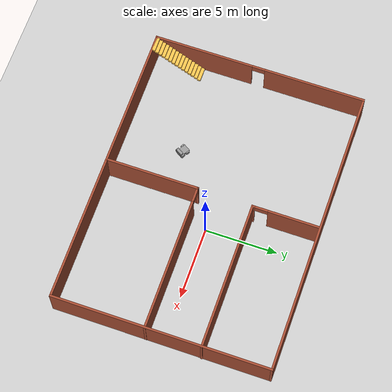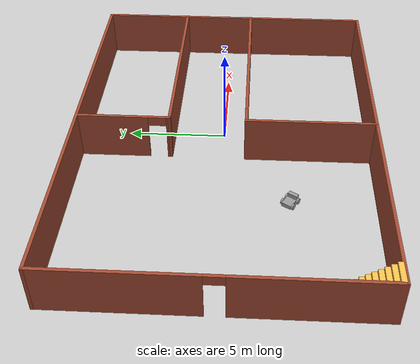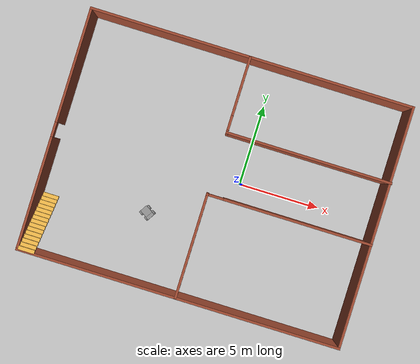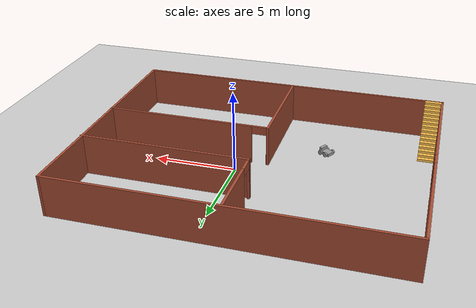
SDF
<sdf version="1.6">
 <world name="default">
  <model name="ground_plane">
   <static>1</static>
   <link name="link">
    <collision name="collision">
     <geometry><plane><normal>0 0 1</normal><size>100 100</size></plane></geometry>
     <surface><friction><ode><mu>100</mu><mu2>50</mu2></ode></friction></surface>
    </collision>
    <visual name="visual">
     <cast_shadows>0</cast_shadows>
     <geometry><plane><normal>0 0 1</normal><size>100 100</size></plane></geometry>
     <material>
      <script><uri>file://media/materials/scripts/gazebo.material</uri><name>Gazebo/Grey</name></script>
     </material>
    </visual>
   </link>
  </model>
  <model name="my_building">
   <pose>-1.54952 -0.113729 0 0 -0 0</pose>
   <link name="Stairs_0">
    <visual name="Stairs_0_Visual_0">
     <pose>-9.39287 -4.03181 0.083333 0 -0 0</pose>
     <geometry><box><size>1 0.233333 0.166667</size></box></geometry>
     <material>
      <script><uri>file://media/materials/scripts/gazebo.material</uri><name>Gazebo/Grey</name></script>
      <ambient>1 0.764706 0.305882 1</ambient>
     </material>
    </visual>
    <collision name="Stairs_0_Collision_0">
     <geometry><box><size>1 0.233333 0.166667</size></box></geometry>
     <pose>-9.39287 -4.03181 0.083333 0 -0 0</pose>
    </collision>
    <visual name="Stairs_0_Visual_1">
     <pose>-9.39287 -4.26514 0.25 0 -0 0</pose>
     <geometry><box><size>1 0.233333 0.166667</size></box></geometry>
     <material>
      <script><uri>file://media/materials/scripts/gazebo.material</uri><name>Gazebo/Grey</name></script>
      <ambient>1 0.764706 0.305882 1</ambient>
     </material>
    </visual>
    <collision name="Stairs_0_Collision_1">
     <geometry><box><size>1 0.233333 0.166667</size></box></geometry>
     <pose>-9.39287 -4.26514 0.25 0 -0 0</pose>
    </collision>
    <visual name="Stairs_0_Visual_2">
     <pose>-9.39287 -4.49847 0.416667 0 -0 0</pose>
     <geometry><box><size>1 0.233333 0.166667</size></box></geometry>
     <material>
      <script><uri>file://media/materials/scripts/gazebo.material</uri><name>Gazebo/Grey</name></script>
      <ambient>1 0.764706 0.305882 1</ambient>
     </material>
    </visual>
    <collision name="Stairs_0_Collision_2">
     <geometry><box><size>1 0.233333 0.166667</size></box></geometry>
     <pose>-9.39287 -4.49847 0.416667 0 -0 0</pose>
    </collision>
    <visual name="Stairs_0_Visual_3">
     <pose>-9.39287 -4.73181 0.583333 0 -0 0</pose>
     <geometry><box><size>1 0.233333 0.166667</size></box></geometry>
     <material>
      <script><uri>file://media/materials/scripts/gazebo.material</uri><name>Gazebo/Grey</name></script>
      <ambient>1 0.764706 0.305882 1</ambient>
     </material>
    </visual>
    <collision name="Stairs_0_Collision_3">
     <geometry><box><size>1 0.233333 0.166667</size></box></geometry>
     <pose>-9.39287 -4.73181 0.583333 0 -0 0</pose>
    </collision>
    <visual name="Stairs_0_Visual_4">
     <pose>-9.39287 -4.96514 0.75 0 -0 0</pose>
     <geometry><box><size>1 0.233333 0.166667</size></box></geometry>
     <material>
      <script><uri>file://media/materials/scripts/gazebo.material</uri><name>Gazebo/Grey</name></script>
      <ambient>1 0.764706 0.305882 1</ambient>
     </material>
    </visual>
    <collision name="Stairs_0_Collision_4">
     <geometry><box><size>1 0.233333 0.166667</size></box></geometry>
     <pose>-9.39287 -4.96514 0.75 0 -0 0</pose>
    </collision>
    <visual name="Stairs_0_Visual_5">
     <pose>-9.39287 -5.19847 0.916667 0 -0 0</pose>
     <geometry><box><size>1 0.233333 0.166667</size></box></geometry>
     <material>
      <script><uri>file://media/materials/scripts/gazebo.material</uri><name>Gazebo/Grey</name></script>
      <ambient>1 0.764706 0.305882 1</ambient>
     </material>
    </visual>
    <collision name="Stairs_0_Collision_5">
     <geometry><box><size>1 0.233333 0.166667</size></box></geometry>
     <pose>-9.39287 -5.19847 0.916667 0 -0 0</pose>
    </collision>
    <visual name="Stairs_0_Visual_6">
     <pose>-9.39287 -5.43181 1.08333 0 -0 0</pose>
     <geometry><box><size>1 0.233333 0.166667</size></box></geometry>
     <material>
      <script><uri>file://media/materials/scripts/gazebo.material</uri><name>Gazebo/Grey</name></script>
      <ambient>1 0.764706 0.305882 1</ambient>
     </material>
    </visual>
    <collision name="Stairs_0_Collision_6">
     <geometry><box><size>1 0.233333 0.166667</size></box></geometry>
     <pose>-9.39287 -5.43181 1.08333 0 -0 0</pose>
    </collision>
    <visual name="Stairs_0_Visual_7">
     <pose>-9.39287 -5.66514 1.25 0 -0 0</pose>
     <geometry><box><size>1 0.233333 0.166667</size></box></geometry>
     <material>
      <script><uri>file://media/materials/scripts/gazebo.material</uri><name>Gazebo/Grey</name></script>
      <ambient>1 0.764706 0.305882 1</ambient>
     </material>
    </visual>
    <collision name="Stairs_0_Collision_7">
     <geometry><box><size>1 0.233333 0.166667</size></box></geometry>
     <pose>-9.39287 -5.66514 1.25 0 -0 0</pose>
    </collision>
    <visual name="Stairs_0_Visual_8">
     <pose>-9.39287 -5.89848 1.41667 0 -0 0</pose>
     <geometry><box><size>1 0.233333 0.166667</size></box></geometry>
     <material>
      <script><uri>file://media/materials/scripts/gazebo.material</uri><name>Gazebo/Grey</name></script>
      <ambient>1 0.764706 0.305882 1</ambient>
     </material>
    </visual>
    <collision name="Stairs_0_Collision_8">
     <geometry><box><size>1 0.233333 0.166667</size></box></geometry>
     <pose>-9.39287 -5.89848 1.41667 0 -0 0</pose>
    </collision>
    <visual name="Stairs_0_Visual_9">
     <pose>-9.39287 -6.13181 1.58333 0 -0 0</pose>
     <geometry><box><size>1 0.233333 0.166667</size></box></geometry>
     <material>
      <script><uri>file://media/materials/scripts/gazebo.material</uri><name>Gazebo/Grey</name></script>
      <ambient>1 0.764706 0.305882 1</ambient>
     </material>
    </visual>
    <collision name="Stairs_0_Collision_9">
     <geometry><box><size>1 0.233333 0.166667</size></box></geometry>
     <pose>-9.39287 -6.13181 1.58333 0 -0 0</pose>
    </collision>
    <visual name="Stairs_0_Visual_10">
     <pose>-9.39287 -6.36514 1.75 0 -0 0</pose>
     <geometry><box><size>1 0.233333 0.166667</size></box></geometry>
     <material>
      <script><uri>file://media/materials/scripts/gazebo.material</uri><name>Gazebo/Grey</name></script>
      <ambient>1 0.764706 0.305882 1</ambient>
     </material>
    </visual>
    <collision name="Stairs_0_Collision_10">
     <geometry><box><size>1 0.233333 0.166667</size></box></geometry>
     <pose>-9.39287 -6.36514 1.75 0 -0 0</pose>
    </collision>
    <visual name="Stairs_0_Visual_11">
     <pose>-9.39287 -6.59847 1.91667 0 -0 0</pose>
     <geometry><box><size>1 0.233333 0.166667</size></box></geometry>
     <material>
      <script><uri>file://media/materials/scripts/gazebo.material</uri><name>Gazebo/Grey</name></script>
      <ambient>1 0.764706 0.305882 1</ambient>
     </material>
    </visual>
    <collision name="Stairs_0_Collision_11">
     <geometry><box><size>1 0.233333 0.166667</size></box></geometry>
     <pose>-9.39287 -6.59847 1.91667 0 -0 0</pose>
    </collision>
    <visual name="Stairs_0_Visual_12">
     <pose>-9.39287 -6.83181 2.08333 0 -0 0</pose>
     <geometry><box><size>1 0.233333 0.166667</size></box></geometry>
     <material>
      <script><uri>file://media/materials/scripts/gazebo.material</uri><name>Gazebo/Grey</name></script>
      <ambient>1 0.764706 0.305882 1</ambient>
     </material>
    </visual>
    <collision name="Stairs_0_Collision_12">
     <geometry><box><size>1 0.233333 0.166667</size></box></geometry>
     <pose>-9.39287 -6.83181 2.08333 0 -0 0</pose>
    </collision>
    <visual name="Stairs_0_Visual_13">
     <pose>-9.39287 -7.06514 2.25 0 -0 0</pose>
     <geometry><box><size>1 0.233333 0.166667</size></box></geometry>
     <material>
      <script><uri>file://media/materials/scripts/gazebo.material</uri><name>Gazebo/Grey</name></script>
      <ambient>1 0.764706 0.305882 1</ambient>
     </material>
    </visual>
    <collision name="Stairs_0_Collision_13">
     <geometry><box><size>1 0.233333 0.166667</size></box></geometry>
     <pose>-9.39287 -7.06514 2.25 0 -0 0</pose>
    </collision>
    <visual name="Stairs_0_Visual_14">
     <pose>-9.39287 -7.29847 2.41667 0 -0 0</pose>
     <geometry><box><size>1 0.233333 0.166667</size></box></geometry>
     <material>
      <script><uri>file://media/materials/scripts/gazebo.material</uri><name>Gazebo/Grey</name></script>
      <ambient>1 0.764706 0.305882 1</ambient>
     </material>
    </visual>
    <collision name="Stairs_0_Collision_14">
     <geometry><box><size>1 0.233333 0.166667</size></box></geometry>
     <pose>-9.39287 -7.29847 2.41667 0 -0 0</pose>
    </collision>
   </link>
   <link name="Wall_10">
    <collision name="Wall_10_Collision">
     <geometry><box><size>6.5 0.15 2.5</size></box></geometry>
     <pose>0 0 1.25 0 -0 0</pose>
    </collision>
    <visual name="Wall_10_Visual">
     <pose>0 0 1.25 0 -0 0</pose>
     <geometry><box><size>6.5 0.15 2.5</size></box></geometry>
     <material>
      <script><uri>file://media/materials/scripts/gazebo.material</uri><name>Gazebo/Bricks</name></script>
      <ambient>1 1 1 1</ambient>
     </material>
    </visual>
    <pose>-0.184819 -4.2104 0 0 -0 1.5708</pose>
   </link>
   <link name="Wall_11">
    <pose>4.86518 -1.0354 0 0 -0 0</pose>
    <visual name="Wall_11_Visual_0">
     <pose>-5.04163 0 1.25 0 -0 0</pose>
     <geometry><box><size>0.166741 0.15 2.5</size></box></geometry>
     <material>
      <script><uri>file://media/materials/scripts/gazebo.material</uri><name>Gazebo/Bricks</name></script>
      <ambient>1 1 1 1</ambient>
     </material>
    </visual>
    <collision name="Wall_11_Collision_0">
     <geometry><box><size>0.166741 0.15 2.5</size></box></geometry>
     <pose>-5.04163 0 1.25 0 -0 0</pose>
    </collision>
    <visual name="Wall_11_Visual_1">
     <pose>0.53337 0 1.25 0 -0 0</pose>
     <geometry><box><size>9.18326 0.15 2.5</size></box></geometry>
     <material>
      <script><uri>file://media/materials/scripts/gazebo.material</uri><name>Gazebo/Bricks</name></script>
      <ambient>1 1 1 1</ambient>
     </material>
    </visual>
    <collision name="Wall_11_Collision_1">
     <geometry><box><size>9.18326 0.15 2.5</size></box></geometry>
     <pose>0.53337 0 1.25 0 -0 0</pose>
    </collision>
    <visual name="Wall_11_Visual_2">
     <pose>-4.50826 0 2.25 0 -0 0</pose>
     <geometry><box><size>0.9 0.15 0.5</size></box></geometry>
     <material>
      <script><uri>file://media/materials/scripts/gazebo.material</uri><name>Gazebo/Bricks</name></script>
      <ambient>1 1 1 1</ambient>
     </material>
    </visual>
    <collision name="Wall_11_Collision_2">
     <geometry><box><size>0.9 0.15 0.5</size></box></geometry>
     <pose>-4.50826 0 2.25 0 -0 0</pose>
    </collision>
   </link>
   <link name="Wall_13">
    <collision name="Wall_13_Collision">
     <geometry><box><size>10.25 0.15 2.5</size></box></geometry>
     <pose>0 0 1.25 0 -0 0</pose>
    </collision>
    <visual name="Wall_13_Visual">
     <pose>0 0 1.25 0 -0 0</pose>
     <geometry><box><size>10.25 0.15 2.5</size></box></geometry>
     <material>
      <script><uri>file://media/materials/scripts/gazebo.material</uri><name>Gazebo/Bricks</name></script>
      <ambient>1 1 1 1</ambient>
     </material>
    </visual>
    <pose>4.89666 2.78126 0 0 -0 3.14159</pose>
   </link>
   <link name="Wall_14">
    <pose>-0.153335 5.08126 0 0 -0 1.5708</pose>
    <visual name="Wall_14_Visual_0">
     <pose>-2.25468 0 1.25 0 -0 0</pose>
     <geometry><box><size>0.24065 0.15 2.5</size></box></geometry>
     <material>
      <script><uri>file://media/materials/scripts/gazebo.material</uri><name>Gazebo/Bricks</name></script>
      <ambient>1 1 1 1</ambient>
     </material>
    </visual>
    <collision name="Wall_14_Collision_0">
     <geometry><box><size>0.24065 0.15 2.5</size></box></geometry>
     <pose>-2.25468 0 1.25 0 -0 0</pose>
    </collision>
    <visual name="Wall_14_Visual_1">
     <pose>0.570325 0 1.25 0 -0 0</pose>
     <geometry><box><size>3.60935 0.15 2.5</size></box></geometry>
     <material>
      <script><uri>file://media/materials/scripts/gazebo.material</uri><name>Gazebo/Bricks</name></script>
      <ambient>1 1 1 1</ambient>
     </material>
    </visual>
    <collision name="Wall_14_Collision_1">
     <geometry><box><size>3.60935 0.15 2.5</size></box></geometry>
     <pose>0.570325 0 1.25 0 -0 0</pose>
    </collision>
    <visual name="Wall_14_Visual_2">
     <pose>-1.68435 0 2.25 0 -0 0</pose>
     <geometry><box><size>0.9 0.15 0.5</size></box></geometry>
     <material>
      <script><uri>file://media/materials/scripts/gazebo.material</uri><name>Gazebo/Bricks</name></script>
      <ambient>1 1 1 1</ambient>
     </material>
    </visual>
    <collision name="Wall_14_Collision_2">
     <geometry><box><size>0.9 0.15 0.5</size></box></geometry>
     <pose>-1.68435 0 2.25 0 -0 0</pose>
    </collision>
   </link>
   <link name="Wall_2">
    <collision name="Wall_2_Collision">
     <geometry><box><size>20 0.15 2.5</size></box></geometry>
     <pose>0 0 1.25 0 -0 0</pose>
    </collision>
    <visual name="Wall_2_Visual">
     <pose>0 0 1.25 0 -0 0</pose>
     <geometry><box><size>20 0.15 2.5</size></box></geometry>
     <material>
      <script><uri>file://media/materials/scripts/gazebo.material</uri><name>Gazebo/Bricks</name></script>
      <ambient>1 1 1 1</ambient>
     </material>
    </visual>
    <pose>-0.021664 -7.425 0 0 -0 0</pose>
   </link>
   <link name="Wall_3">
    <collision name="Wall_3_Collision">
     <geometry><box><size>15 0.15 2.5</size></box></geometry>
     <pose>0 0 1.25 0 -0 0</pose>
    </collision>
    <visual name="Wall_3_Visual">
     <pose>0 0 1.25 0 -0 0</pose>
     <geometry><box><size>15 0.15 2.5</size></box></geometry>
     <material>
      <script><uri>file://media/materials/scripts/gazebo.material</uri><name>Gazebo/Bricks</name></script>
      <ambient>1 1 1 1</ambient>
     </material>
    </visual>
    <pose>9.90334 0 0 0 -0 1.5708</pose>
   </link>
   <link name="Wall_4">
    <collision name="Wall_4_Collision">
     <geometry><box><size>20 0.15 2.5</size></box></geometry>
     <pose>0 0 1.25 0 -0 0</pose>
    </collision>
    <visual name="Wall_4_Visual">
     <pose>0 0 1.25 0 -0 0</pose>
     <geometry><box><size>20 0.15 2.5</size></box></geometry>
     <material>
      <script><uri>file://media/materials/scripts/gazebo.material</uri><name>Gazebo/Bricks</name></script>
      <ambient>1 1 1 1</ambient>
     </material>
    </visual>
    <pose>-0.021664 7.425 0 0 -0 3.14159</pose>
   </link>
   <link name="Wall_8">
    <pose>-9.94666 0 0 0 0 -1.5708</pose>
    <visual name="Wall_8_Visual_0">
     <pose>-3.95046 0 1.25 0 -0 0</pose>
     <geometry><box><size>7.09907 0.15 2.5</size></box></geometry>
     <material>
      <script><uri>file://media/materials/scripts/gazebo.material</uri><name>Gazebo/Bricks</name></script>
      <ambient>1 1 1 1</ambient>
     </material>
    </visual>
    <collision name="Wall_8_Collision_0">
     <geometry><box><size>7.09907 0.15 2.5</size></box></geometry>
     <pose>-3.95046 0 1.25 0 -0 0</pose>
    </collision>
    <visual name="Wall_8_Visual_1">
     <pose>3.99954 0 1.25 0 -0 0</pose>
     <geometry><box><size>7.00093 0.15 2.5</size></box></geometry>
     <material>
      <script><uri>file://media/materials/scripts/gazebo.material</uri><name>Gazebo/Bricks</name></script>
      <ambient>1 1 1 1</ambient>
     </material>
    </visual>
    <collision name="Wall_8_Collision_1">
     <geometry><box><size>7.00093 0.15 2.5</size></box></geometry>
     <pose>3.99954 0 1.25 0 -0 0</pose>
    </collision>
    <visual name="Wall_8_Visual_2">
     <pose>0.049074 0 2.25 0 -0 0</pose>
     <geometry><box><size>0.9 0.15 0.5</size></box></geometry>
     <material>
      <script><uri>file://media/materials/scripts/gazebo.material</uri><name>Gazebo/Bricks</name></script>
      <ambient>1 1 1 1</ambient>
     </material>
    </visual>
    <collision name="Wall_8_Collision_2">
     <geometry><box><size>0.9 0.15 0.5</size></box></geometry>
     <pose>0.049074 0 2.25 0 -0 0</pose>
    </collision>
   </link>
   <static>1</static>
  </model>
  <model name="my_robot_0">
   <link name="link_0">
    <pose>-0.054167 -1e-06 -0.033333 0 -0 0</pose>
    <inertial>
     <mass>1</mass>
     <inertia>
      <ixx>0.166667</ixx>
      <ixy>0</ixy>
      <ixz>0</ixz>
      <iyy>0.166667</iyy>
      <iyz>0</iyz>
      <izz>0.166667</izz>
     </inertia>
    </inertial>
    <visual name="visual">
     <geometry><box><size>0.75 0.5 0.2</size></box></geometry>
     <material>
      <lighting>1</lighting>
      <script><uri>file://media/materials/scripts/gazebo.material</uri><name>Gazebo/Grey</name></script>
      <ambient>0.3 0.3 0.3 1</ambient>
      <diffuse>0.7 0.7 0.7 1</diffuse>
      <specular>0.01 0.01 0.01 1</specular>
      <emissive>0 0 0 1</emissive>
      <shader type="vertex"><normal_map>__default__</normal_map></shader>
     </material>
    </visual>
    <collision name="collision">
     <geometry><box><size>0.75 0.5 0.2</size></box></geometry>
     <surface>
      <friction>
       <ode><mu>1</mu><mu2>1</mu2><fdir1>0 0 0</fdir1><slip1>0</slip1><slip2>0</slip2></ode>
       <torsional>
        <coefficient>1</coefficient>
        <patch_radius>0</patch_radius>
        <surface_radius>0</surface_radius>
        <use_patch_radius>1</use_patch_radius>
        <ode><slip>0</slip></ode>
       </torsional>
      </friction>
      <bounce><restitution_coefficient>0</restitution_coefficient><threshold>1e+06</threshold></bounce>
      <contact>
       <collide_without_contact>0</collide_without_contact>
       <collide_without_contact_bitmask>1</collide_without_contact_bitmask>
       <collide_bitmask>1</collide_bitmask>
       <ode>
        <soft_cfm>0</soft_cfm>
        <soft_erp>0.2</soft_erp>
        <kp>1e+13</kp>
        <kd>1</kd>
        <max_vel>0.01</max_vel>
        <min_depth>0</min_depth>
       </ode>
       <bullet>
        <split_impulse>1</split_impulse>
        <split_impulse_penetration_threshold>-0.01</split_impulse_penetration_threshold>
        <soft_cfm>0</soft_cfm>
        <soft_erp>0.2</soft_erp>
        <kp>1e+13</kp>
        <kd>1</kd>
       </bullet>
      </contact>
     </surface>
    </collision>
   </link>
   <link name="link_1">
    <pose>-0.229167 0.300018 -0.033333 1.5707 -0 0</pose>
    <inertial>
     <mass>1</mass>
     <inertia><ixx>0.145833</ixx><ixy>0</ixy><ixz>0</ixz><iyy>0.145833</iyy><iyz>0</iyz><izz>0.125</izz></inertia>
    </inertial>
    <visual name="visual">
     <geometry><cylinder><radius>0.15</radius><length>0.1</length></cylinder></geometry>
     <material>
      <lighting>1</lighting>
      <script><uri>file://media/materials/scripts/gazebo.material</uri><name>Gazebo/Grey</name></script>
      <ambient>0.3 0.3 0.3 1</ambient>
      <diffuse>0.7 0.7 0.7 1</diffuse>
      <specular>0.01 0.01 0.01 1</specular>
      <emissive>0 0 0 1</emissive>
      <shader type="vertex"><normal_map>__default__</normal_map></shader>
     </material>
    </visual>
    <collision name="collision">
     <geometry><cylinder><radius>0.15</radius><length>0.1</length></cylinder></geometry>
     <surface>
      <friction>
       <ode><mu>1</mu><mu2>1</mu2><fdir1>0 0 0</fdir1><slip1>0</slip1><slip2>0</slip2></ode>
       <torsional>
        <coefficient>1</coefficient>
        <patch_radius>0</patch_radius>
        <surface_radius>0</surface_radius>
        <use_patch_radius>1</use_patch_radius>
        <ode><slip>0</slip></ode>
       </torsional>
      </friction>
      <bounce><restitution_coefficient>0</restitution_coefficient><threshold>1e+06</threshold></bounce>
      <contact>
       <collide_without_contact>0</collide_without_contact>
       <collide_without_contact_bitmask>1</collide_without_contact_bitmask>
       <collide_bitmask>1</collide_bitmask>
       <ode>
        <soft_cfm>0</soft_cfm>
        <soft_erp>0.2</soft_erp>
        <kp>1e+13</kp>
        <kd>1</kd>
        <max_vel>0.01</max_vel>
        <min_depth>0</min_depth>
       </ode>
       <bullet>
        <split_impulse>1</split_impulse>
        <split_impulse_penetration_threshold>-0.01</split_impulse_penetration_threshold>
        <soft_cfm>0</soft_cfm>
        <soft_erp>0.2</soft_erp>
        <kp>1e+13</kp>
        <kd>1</kd>
       </bullet>
      </contact>
     </surface>
    </collision>
   </link>
   <link name="link_1_clone">
    <pose>0.170833 0.300014 -0.033333 1.5707 -0 0</pose>
    <inertial>
     <mass>1</mass>
     <inertia><ixx>0.145833</ixx><ixy>0</ixy><ixz>0</ixz><iyy>0.145833</iyy><iyz>0</iyz><izz>0.125</izz></inertia>
    </inertial>
    <visual name="visual">
     <geometry><cylinder><radius>0.15</radius><length>0.1</length></cylinder></geometry>
     <material>
      <lighting>1</lighting>
      <script><uri>file://media/materials/scripts/gazebo.material</uri><name>Gazebo/Grey</name></script>
      <ambient>0.3 0.3 0.3 1</ambient>
      <diffuse>0.7 0.7 0.7 1</diffuse>
      <specular>0.01 0.01 0.01 1</specular>
      <emissive>0 0 0 1</emissive>
      <shader type="vertex"><normal_map>__default__</normal_map></shader>
     </material>
    </visual>
    <collision name="collision">
     <geometry><cylinder><radius>0.15</radius><length>0.1</length></cylinder></geometry>
     <surface>
      <friction>
       <ode><mu>1</mu><mu2>1</mu2><fdir1>0 0 0</fdir1><slip1>0</slip1><slip2>0</slip2></ode>
       <torsional>
        <coefficient>1</coefficient>
        <patch_radius>0</patch_radius>
        <surface_radius>0</surface_radius>
        <use_patch_radius>1</use_patch_radius>
        <ode><slip>0</slip></ode>
       </torsional>
      </friction>
      <bounce><restitution_coefficient>0</restitution_coefficient><threshold>1e+06</threshold></bounce>
      <contact>
       <collide_without_contact>0</collide_without_contact>
       <collide_without_contact_bitmask>1</collide_without_contact_bitmask>
       <collide_bitmask>1</collide_bitmask>
       <ode>
        <soft_cfm>0</soft_cfm>
        <soft_erp>0.2</soft_erp>
        <kp>1e+13</kp>
        <kd>1</kd>
        <max_vel>0.01</max_vel>
        <min_depth>0</min_depth>
       </ode>
       <bullet>
        <split_impulse>1</split_impulse>
        <split_impulse_penetration_threshold>-0.01</split_impulse_penetration_threshold>
        <soft_cfm>0</soft_cfm>
        <soft_erp>0.2</soft_erp>
        <kp>1e+13</kp>
        <kd>1</kd>
       </bullet>
      </contact>
     </surface>
    </collision>
   </link>
   <link name="link_1_clone_clone">
    <pose>-0.279167 -0.300015 -0.033333 1.5707 -0 0</pose>
    <inertial>
     <mass>1</mass>
     <inertia><ixx>0.145833</ixx><ixy>0</ixy><ixz>0</ixz><iyy>0.145833</iyy><iyz>0</iyz><izz>0.125</izz></inertia>
    </inertial>
    <visual name="visual">
     <geometry><cylinder><radius>0.15</radius><length>0.1</length></cylinder></geometry>
     <material>
      <lighting>1</lighting>
      <script><uri>file://media/materials/scripts/gazebo.material</uri><name>Gazebo/Grey</name></script>
      <ambient>0.3 0.3 0.3 1</ambient>
      <diffuse>0.7 0.7 0.7 1</diffuse>
      <specular>0.01 0.01 0.01 1</specular>
      <emissive>0 0 0 1</emissive>
      <shader type="vertex"><normal_map>__default__</normal_map></shader>
     </material>
    </visual>
    <collision name="collision">
     <geometry><cylinder><radius>0.15</radius><length>0.1</length></cylinder></geometry>
     <surface>
      <friction>
       <ode><mu>1</mu><mu2>1</mu2><fdir1>0 0 0</fdir1><slip1>0</slip1><slip2>0</slip2></ode>
       <torsional>
        <coefficient>1</coefficient>
        <patch_radius>0</patch_radius>
        <surface_radius>0</surface_radius>
        <use_patch_radius>1</use_patch_radius>
        <ode><slip>0</slip></ode>
       </torsional>
      </friction>
      <bounce><restitution_coefficient>0</restitution_coefficient><threshold>1e+06</threshold></bounce>
      <contact>
       <collide_without_contact>0</collide_without_contact>
       <collide_without_contact_bitmask>1</collide_without_contact_bitmask>
       <collide_bitmask>1</collide_bitmask>
       <ode>
        <soft_cfm>0</soft_cfm>
        <soft_erp>0.2</soft_erp>
        <kp>1e+13</kp>
        <kd>1</kd>
        <max_vel>0.01</max_vel>
        <min_depth>0</min_depth>
       </ode>
       <bullet>
        <split_impulse>1</split_impulse>
        <split_impulse_penetration_threshold>-0.01</split_impulse_penetration_threshold>
        <soft_cfm>0</soft_cfm>
        <soft_erp>0.2</soft_erp>
        <kp>1e+13</kp>
        <kd>1</kd>
       </bullet>
      </contact>
     </surface>
    </collision>
   </link>
   <link name="link_1_clone_clone_clone">
    <pose>0.170833 -0.300015 -0.033333 1.5707 -0 0</pose>
    <inertial>
     <mass>1</mass>
     <inertia><ixx>0.145833</ixx><ixy>0</ixy><ixz>0</ixz><iyy>0.145833</iyy><iyz>0</iyz><izz>0.125</izz></inertia>
    </inertial>
    <visual name="visual">
     <geometry><cylinder><radius>0.15</radius><length>0.1</length></cylinder></geometry>
     <material>
      <lighting>1</lighting>
      <script><uri>file://media/materials/scripts/gazebo.material</uri><name>Gazebo/Grey</name></script>
      <ambient>0.3 0.3 0.3 1</ambient>
      <diffuse>0.7 0.7 0.7 1</diffuse>
      <specular>0.01 0.01 0.01 1</specular>
      <emissive>0 0 0 1</emissive>
      <shader type="vertex"><normal_map>__default__</normal_map></shader>
     </material>
    </visual>
    <collision name="collision">
     <geometry><cylinder><radius>0.15</radius><length>0.1</length></cylinder></geometry>
     <surface>
      <friction>
       <ode><mu>1</mu><mu2>1</mu2><fdir1>0 0 0</fdir1><slip1>0</slip1><slip2>0</slip2></ode>
       <torsional>
        <coefficient>1</coefficient>
        <patch_radius>0</patch_radius>
        <surface_radius>0</surface_radius>
        <use_patch_radius>1</use_patch_radius>
        <ode><slip>0</slip></ode>
       </torsional>
      </friction>
      <bounce><restitution_coefficient>0</restitution_coefficient><threshold>1e+06</threshold></bounce>
      <contact>
       <collide_without_contact>0</collide_without_contact>
       <collide_without_contact_bitmask>1</collide_without_contact_bitmask>
       <collide_bitmask>1</collide_bitmask>
       <ode>
        <soft_cfm>0</soft_cfm>
        <soft_erp>0.2</soft_erp>
        <kp>1e+13</kp>
        <kd>1</kd>
        <max_vel>0.01</max_vel>
        <min_depth>0</min_depth>
       </ode>
       <bullet>
        <split_impulse>1</split_impulse>
        <split_impulse_penetration_threshold>-0.01</split_impulse_penetration_threshold>
        <soft_cfm>0</soft_cfm>
        <soft_erp>0.2</soft_erp>
        <kp>1e+13</kp>
        <kd>1</kd>
       </bullet>
      </contact>
     </surface>
    </collision>
   </link>
   <link name="link_2">
    <pose>0.220833 -1e-06 0.166667 0 -0 0</pose>
    <inertial>
     <mass>1</mass>
     <inertia>
      <ixx>0.166667</ixx>
      <ixy>0</ixy>
      <ixz>0</ixz>
      <iyy>0.166667</iyy>
      <iyz>0</iyz>
      <izz>0.166667</izz>
     </inertia>
    </inertial>
    <visual name="visual">
     <pose>-0.01 0 0 0 -0 0</pose>
     <geometry><box><size>0.2 0.5 0.2</size></box></geometry>
     <material>
      <lighting>1</lighting>
      <script><uri>file://media/materials/scripts/gazebo.material</uri><name>Gazebo/Grey</name></script>
      <ambient>0.3 0.3 0.3 1</ambient>
      <diffuse>0.7 0.7 0.7 1</diffuse>
      <specular>0.01 0.01 0.01 1</specular>
      <emissive>0 0 0 1</emissive>
      <shader type="vertex"><normal_map>__default__</normal_map></shader>
     </material>
    </visual>
    <collision name="collision">
     <geometry><box><size>0.2 0.5 0.2</size></box></geometry>
     <surface>
      <friction>
       <ode><mu>1</mu><mu2>1</mu2><fdir1>0 0 0</fdir1><slip1>0</slip1><slip2>0</slip2></ode>
       <torsional>
        <coefficient>1</coefficient>
        <patch_radius>0</patch_radius>
        <surface_radius>0</surface_radius>
        <use_patch_radius>1</use_patch_radius>
        <ode><slip>0</slip></ode>
       </torsional>
      </friction>
      <bounce><restitution_coefficient>0</restitution_coefficient><threshold>1e+06</threshold></bounce>
      <contact>
       <collide_without_contact>0</collide_without_contact>
       <collide_without_contact_bitmask>1</collide_without_contact_bitmask>
       <collide_bitmask>1</collide_bitmask>
       <ode>
        <soft_cfm>0</soft_cfm>
        <soft_erp>0.2</soft_erp>
        <kp>1e+13</kp>
        <kd>1</kd>
        <max_vel>0.01</max_vel>
        <min_depth>0</min_depth>
       </ode>
       <bullet>
        <split_impulse>1</split_impulse>
        <split_impulse_penetration_threshold>-0.01</split_impulse_penetration_threshold>
        <soft_cfm>0</soft_cfm>
        <soft_erp>0.2</soft_erp>
        <kp>1e+13</kp>
        <kd>1</kd>
       </bullet>
      </contact>
     </surface>
    </collision>
   </link>
   <joint name="link_0_JOINT_0" type="revolute">
    <parent>link_0</parent>
    <child>link_1</child>
    <axis>
     <xyz>0 0 1</xyz>
     <use_parent_model_frame>0</use_parent_model_frame>
     <limit>
      <lower>-1.79769e+308</lower>
      <upper>1.79769e+308</upper>
      <effort>-1</effort>
      <velocity>-1</velocity>
     </limit>
     <dynamics>
      <spring_reference>0</spring_reference>
      <spring_stiffness>0</spring_stiffness>
      <damping>0</damping>
     </dynamics>
    </axis>
    <physics>
     <ode><limit><cfm>0</cfm><erp>0.2</erp></limit><suspension><cfm>0</cfm><erp>0.2</erp></suspension></ode>
    </physics>
   </joint>
   <joint name="link_0_JOINT_1" type="revolute">
    <parent>link_0</parent>
    <child>link_1_clone</child>
    <axis>
     <xyz>0 0 1</xyz>
     <use_parent_model_frame>0</use_parent_model_frame>
     <limit>
      <lower>-1.79769e+308</lower>
      <upper>1.79769e+308</upper>
      <effort>-1</effort>
      <velocity>-1</velocity>
     </limit>
     <dynamics>
      <spring_reference>0</spring_reference>
      <spring_stiffness>0</spring_stiffness>
      <damping>0</damping>
     </dynamics>
    </axis>
    <physics>
     <ode><limit><cfm>0</cfm><erp>0.2</erp></limit><suspension><cfm>0</cfm><erp>0.2</erp></suspension></ode>
    </physics>
   </joint>
   <joint name="link_0_JOINT_2" type="revolute">
    <parent>link_0</parent>
    <child>link_1_clone_clone</child>
    <axis>
     <xyz>0 0 1</xyz>
     <use_parent_model_frame>0</use_parent_model_frame>
     <limit>
      <lower>-1.79769e+308</lower>
      <upper>1.79769e+308</upper>
      <effort>-1</effort>
      <velocity>-1</velocity>
     </limit>
     <dynamics>
      <spring_reference>0</spring_reference>
      <spring_stiffness>0</spring_stiffness>
      <damping>0</damping>
     </dynamics>
    </axis>
    <physics>
     <ode><limit><cfm>0</cfm><erp>0.2</erp></limit><suspension><cfm>0</cfm><erp>0.2</erp></suspension></ode>
    </physics>
   </joint>
   <joint name="link_0_JOINT_3" type="revolute">
    <parent>link_0</parent>
    <child>link_1_clone_clone_clone</child>
    <axis>
     <xyz>1 0 0</xyz>
     <use_parent_model_frame>0</use_parent_model_frame>
     <limit>
      <lower>-1.79769e+308</lower>
      <upper>1.79769e+308</upper>
      <effort>-1</effort>
      <velocity>-1</velocity>
     </limit>
     <dynamics>
      <spring_reference>0</spring_reference>
      <spring_stiffness>0</spring_stiffness>
      <damping>0</damping>
     </dynamics>
    </axis>
    <physics>
     <ode><limit><cfm>0</cfm><erp>0.2</erp></limit><suspension><cfm>0</cfm><erp>0.2</erp></suspension></ode>
    </physics>
   </joint>
   <joint name="link_0_JOINT_4" type="fixed">
    <parent>link_0</parent>
    <child>link_2</child>
    <physics>
     <ode><limit><cfm>0</cfm><erp>0.2</erp></limit><suspension><cfm>0</cfm><erp>0.2</erp></suspension></ode>
    </physics>
   </joint>
   <static>0</static>
   <pose>-4.88502 -3.38591 0.183337 8e-06 1.1e-05 -0.559184</pose>
  </model>
 </world>
</sdf>
